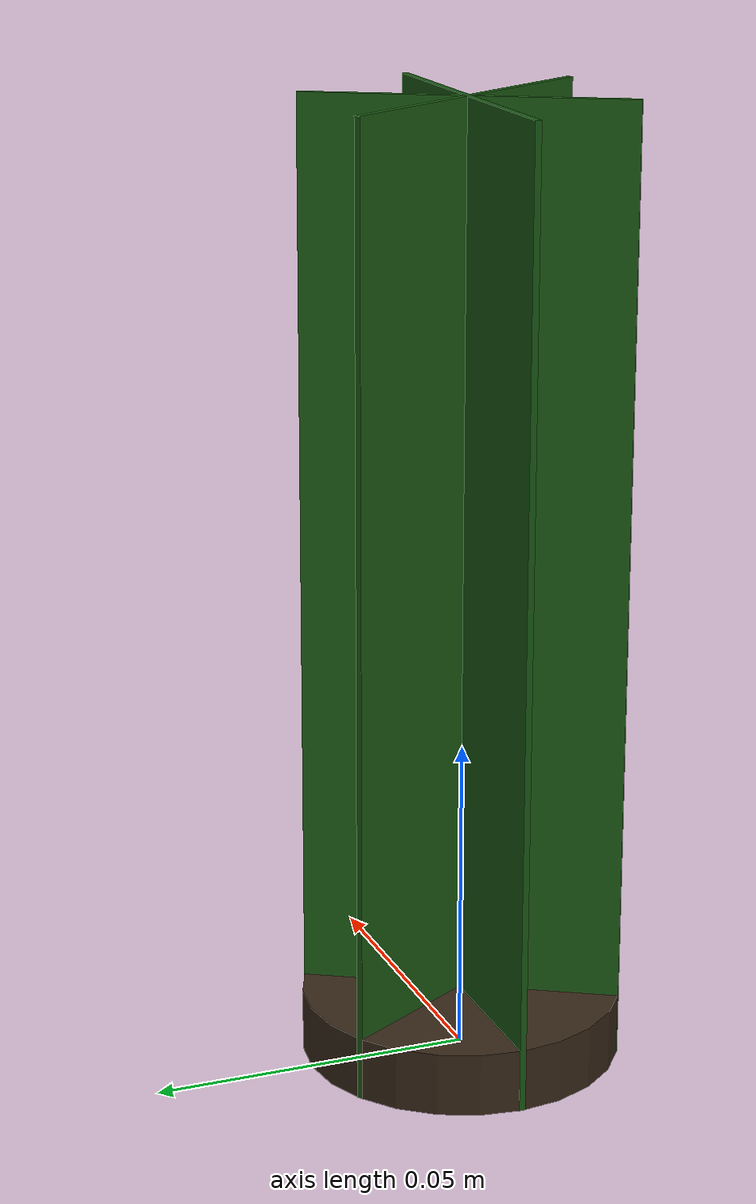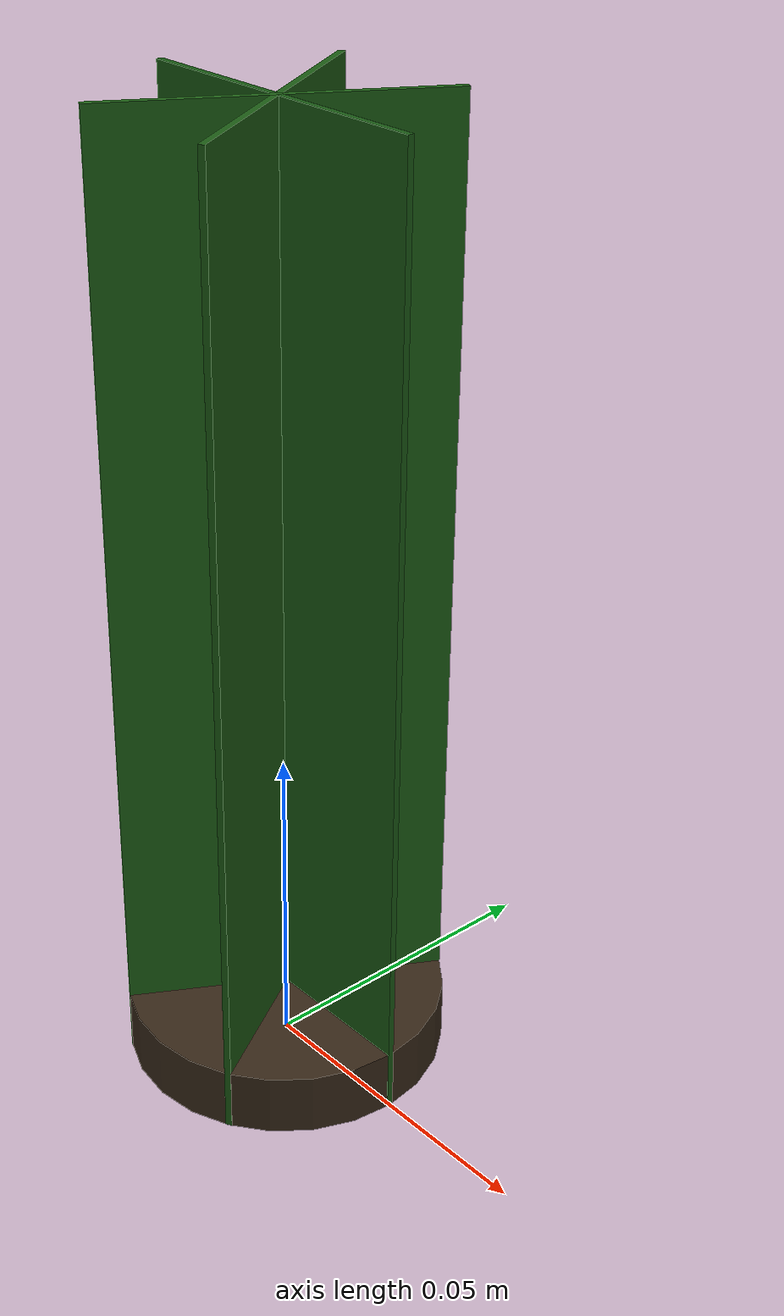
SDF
<?xml version="1.0"?>
<sdf version="1.9">
  <model name="grass_tuft">
    <static>true</static>
    <self_collide>false</self_collide>

    <link name="base_link">
      <visual name="dirt_base_visual">
        <pose>0 0 0.005 0 0 0</pose>
        <geometry>
          <cylinder><radius>0.025</radius><length>0.01</length></cylinder>
        </geometry>
        <material>
          <ambient>0.22 0.16 0.10 1</ambient>
          <diffuse>0.22 0.16 0.10 1</diffuse>
          <specular>0.02 0.02 0.02 1</specular>
        </material>
      </visual>

      <collision name="dirt_base_collision">
        <pose>0 0 0.005 0 0 0</pose>
        <geometry>
          <cylinder><radius>0.02</radius><length>0.01</length></cylinder>
        </geometry>
      </collision>

      <!-- Simplified tuft visual: 3 crossed planes -->
      <visual name="tuft_v1">
        <pose>0 0 0.075 0 0 0</pose>
        <geometry><box><size>0.05 0.001 0.15</size></box></geometry>
        <material><ambient>0.10 0.35 0.08 1</ambient><diffuse>0.10 0.35 0.08 1</diffuse></material>
      </visual>
      <visual name="tuft_v2">
        <pose>0 0 0.075 0 0 1.047</pose>
        <geometry><box><size>0.05 0.001 0.15</size></box></geometry>
        <material><ambient>0.12 0.38 0.09 1</ambient><diffuse>0.12 0.38 0.09 1</diffuse></material>
      </visual>
      <visual name="tuft_v3">
        <pose>0 0 0.075 0 0 2.094</pose>
        <geometry><box><size>0.05 0.001 0.15</size></box></geometry>
        <material><ambient>0.11 0.36 0.08 1</ambient><diffuse>0.11 0.36 0.08 1</diffuse></material>
      </visual>
    </link>
  </model>
</sdf>
